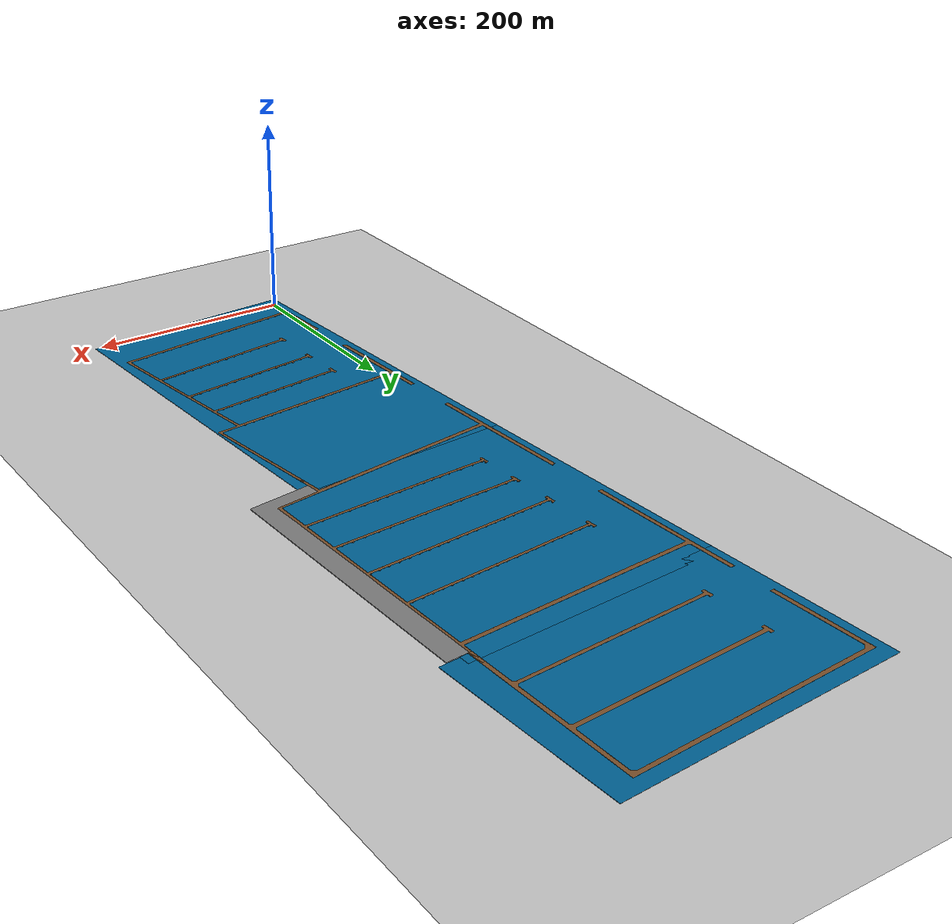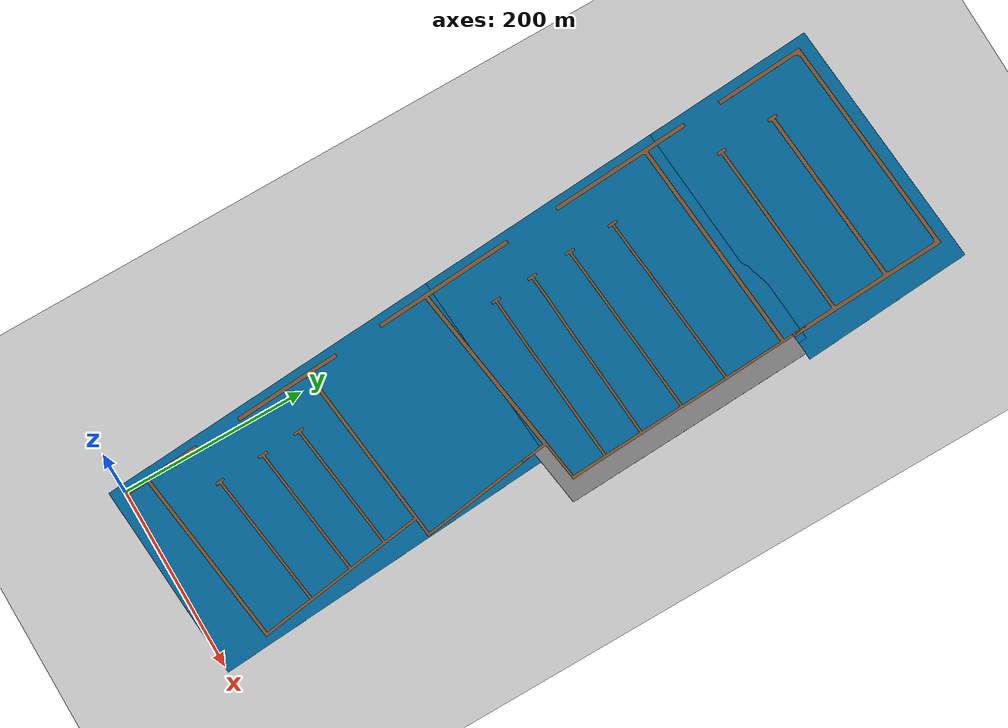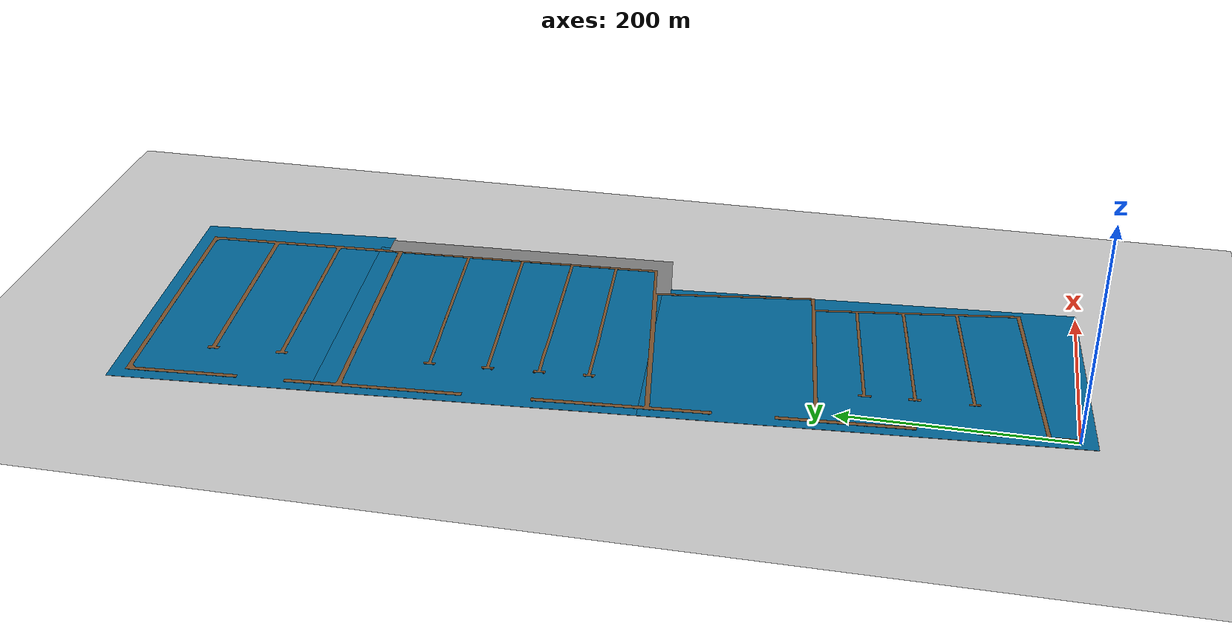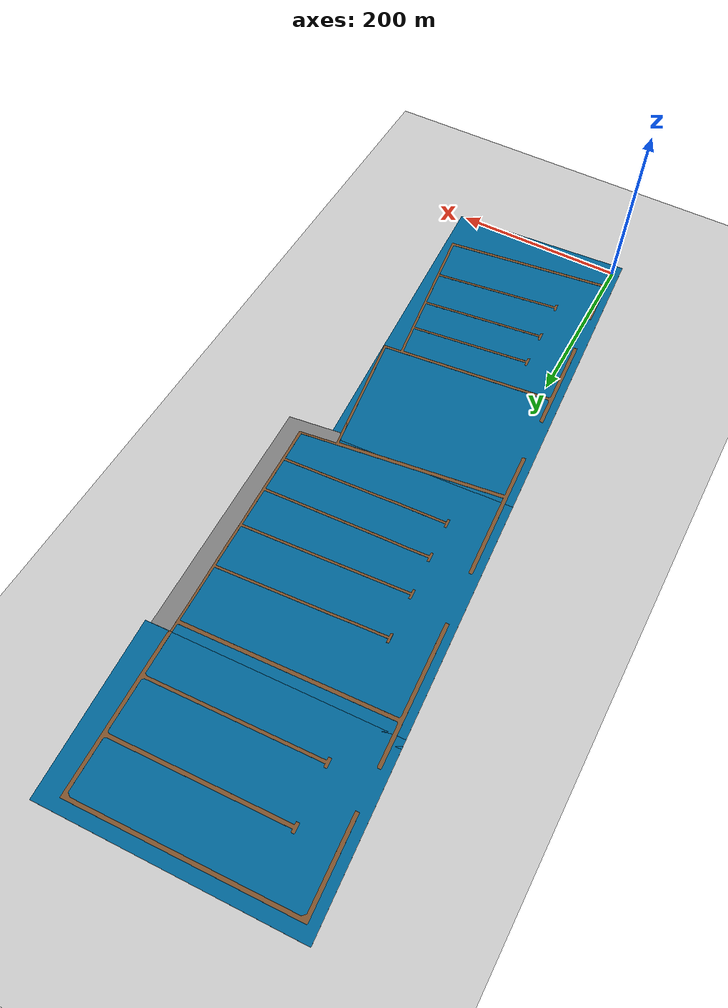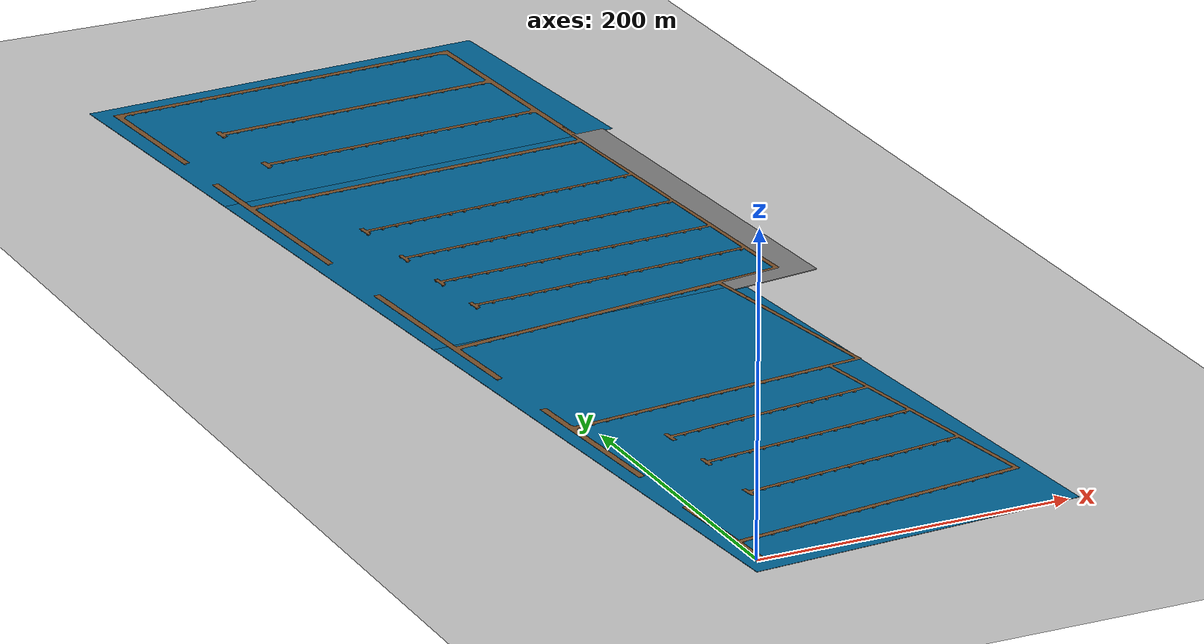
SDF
<sdf version="1.7">
 <world name="default">
  <plugin name="gazebo_ros_state" filename="libgazebo_ros_state.so">
   <ros><namespace>/gazebo</namespace></ros>
   <update_rate>1.0</update_rate>
  </plugin>
  <light name="sun" type="directional">
   <pose>0 0 10 0 -0 0</pose>
   <diffuse>0.8 0.8 0.8 1</diffuse>
   <specular>0.2 0.2 0.2 1</specular>
   <attenuation>
    <range>1000</range>
    <constant>0.9</constant>
    <linear>0.01</linear>
    <quadratic>0.001</quadratic>
   </attenuation>
   <direction>-0.5 0.1 -0.9</direction>
   <spot><inner_angle>0</inner_angle><outer_angle>0</outer_angle><falloff>0</falloff></spot>
  </light>
  <model name="ground_plane">
   <pose>50 50 -1 0 -0 0</pose>
   <static>1</static>
   <link name="link">
    <collision name="collision">
     <geometry><plane><normal>0 0 1</normal><size>100 100</size></plane></geometry>
     <surface><friction><ode><mu>100</mu><mu2>50</mu2></ode></friction></surface>
    </collision>
    <visual name="visual">
     <cast_shadows>0</cast_shadows>
     <geometry><plane><normal>0 0 1</normal><size>100 100</size></plane></geometry>
     <material>
      <script><uri>file://media/materials/scripts/gazebo.material</uri><name>Gazebo/Grey</name></script>
     </material>
    </visual>
   </link>
  </model>
  <gravity>0 0 -9.8</gravity>
  <magnetic_field>6e-06 2.3e-05 -4.2e-05</magnetic_field>
  <atmosphere type="adiabatic"/>
  <physics type="ode">
   <max_step_size>0.001</max_step_size>
   <real_time_factor>1</real_time_factor>
   <real_time_update_rate>1000</real_time_update_rate>
  </physics>
  <scene><ambient>0.4 0.4 0.4 1</ambient><background>0.7 0.7 0.7 1</background><shadows>1</shadows></scene>
  <audio><device>default</device></audio>
  <spherical_coordinates>
   <surface_model>EARTH_WGS84</surface_model>
   <latitude_deg>45.0271</latitude_deg>
   <longitude_deg>14.6258</longitude_deg>
   <elevation>1.5</elevation>
   <heading_deg>180</heading_deg>
  </spherical_coordinates>
  <model name="Marina_Zona_A">
   <link name="link">
    <inertial>
     <mass>100000</mass>
     <inertia><ixx>0</ixx><ixy>0</ixy><ixz>0</ixz><iyy>0</iyy><iyz>0</iyz><izz>0</izz></inertia>
    </inertial>
    <visual name="visual">
     <geometry>
      <mesh>
       <uri>/home/albert/marinero_ws/src/marinero_simulations/models/Marina_Zona_A/meshes/Marina_Zona_A.stl</uri>
       <scale>1 1 1</scale>
      </mesh>
     </geometry>
     <material>
      <script><uri>file://media/materials/scripts/gazebo.material</uri><name>Gazebo/Brown</name></script>
      <ambient>0.278 0.129 0.02 1</ambient>
      <diffuse>0.278 0.129 0.02 1</diffuse>
      <specular>0.278 0.129 0.02 1</specular>
      <emissive>0 0 0 1</emissive>
      <shader type="pixel"><normal_map>__default__</normal_map></shader>
     </material>
    </visual>
    <collision name="collision">
     <geometry>
      <mesh>
       <uri>/home/albert/marinero_ws/src/marinero_simulations/models/Marina_Zona_A/meshes/Marina_Zona_A.stl</uri>
       <scale>1 1 1</scale>
      </mesh>
     </geometry>
     <surface>
      <friction>
       <ode><mu>0.5</mu><mu2>0.5</mu2><fdir1>0 0 0</fdir1><slip1>0.001</slip1><slip2>1e-05</slip2></ode>
       <torsional>
        <coefficient>1</coefficient>
        <patch_radius>0</patch_radius>
        <surface_radius>0</surface_radius>
        <use_patch_radius>1</use_patch_radius>
        <ode><slip>0</slip></ode>
       </torsional>
      </friction>
      <bounce><restitution_coefficient>0</restitution_coefficient><threshold>1000</threshold></bounce>
      <contact>
       <collide_without_contact>0</collide_without_contact>
       <collide_without_contact_bitmask>0</collide_without_contact_bitmask>
       <collide_bitmask>1</collide_bitmask>
       <ode>
        <soft_cfm>0</soft_cfm>
        <soft_erp>0.2</soft_erp>
        <kp>1e+11</kp>
        <kd>100</kd>
        <max_vel>10</max_vel>
        <min_depth>0.001</min_depth>
       </ode>
       <bullet>
        <split_impulse>1</split_impulse>
        <split_impulse_penetration_threshold>-0.01</split_impulse_penetration_threshold>
        <soft_cfm>0</soft_cfm>
        <soft_erp>0.2</soft_erp>
        <kp>1e+11</kp>
        <kd>100</kd>
       </bullet>
      </contact>
     </surface>
    </collision>
   </link>
   <static>1</static>
   <pose>0 0 0.08 0 -0 0.067999</pose>
  </model>
  <model name="sea_plane_A">
   <link name="link">
    <inertial>
     <mass>5.27875e+06</mass>
     <inertia>
      <ixx>4.66688e+09</ixx>
      <ixy>0</ixy>
      <ixz>0</ixz>
      <iyy>1.84866e+10</iyy>
      <iyz>0</iyz>
      <izz>2.31535e+10</izz>
     </inertia>
    </inertial>
    <visual name="visual">
     <cast_shadows>0</cast_shadows>
     <geometry><box><size>215 378 0.25</size></box></geometry>
     <material>
      <script>
       <uri>model://sea_plane/materials/scripts</uri>
       <uri>model://sea_plane/materials/textures</uri>
       <name>vrc/sea</name>
      </script>
      <shader type="pixel"><normal_map>__default__</normal_map></shader>
      <ambient>0 0.4 0.6 0</ambient>
      <diffuse>0 0.4 0.6 1</diffuse>
      <specular>0.2 0.2 0.2 1</specular>
      <emissive>0 0 0 1</emissive>
     </material>
    </visual>
    <collision name="collision">
     <geometry><box><size>215 378 0.25</size></box></geometry>
     <surface>
      <friction>
       <ode><mu>1</mu><mu2>1</mu2><fdir1>0 0 0</fdir1><slip1>0</slip1><slip2>0</slip2></ode>
       <torsional>
        <coefficient>1</coefficient>
        <patch_radius>0</patch_radius>
        <surface_radius>0</surface_radius>
        <use_patch_radius>1</use_patch_radius>
        <ode><slip>0</slip></ode>
       </torsional>
      </friction>
      <bounce><restitution_coefficient>0</restitution_coefficient><threshold>1e+06</threshold></bounce>
      <contact>
       <collide_without_contact>0</collide_without_contact>
       <collide_without_contact_bitmask>1</collide_without_contact_bitmask>
       <collide_bitmask>1</collide_bitmask>
       <ode>
        <soft_cfm>0</soft_cfm>
        <soft_erp>0.2</soft_erp>
        <kp>1e+13</kp>
        <kd>1</kd>
        <max_vel>0.01</max_vel>
        <min_depth>0</min_depth>
       </ode>
       <bullet>
        <split_impulse>1</split_impulse>
        <split_impulse_penetration_threshold>-0.01</split_impulse_penetration_threshold>
        <soft_cfm>0</soft_cfm>
        <soft_erp>0.2</soft_erp>
        <kp>1e+13</kp>
        <kd>1</kd>
       </bullet>
      </contact>
     </surface>
    </collision>
   </link>
   <static>1</static>
   <pose>87 181.108 0 0 -0 0.067999</pose>
  </model>
  <model name="Marina_Zona_B">
   <link name="link">
    <inertial>
     <mass>100000</mass>
     <inertia><ixx>0</ixx><ixy>0</ixy><ixz>0</ixz><iyy>0</iyy><iyz>0</iyz><izz>0</izz></inertia>
    </inertial>
    <visual name="visual">
     <geometry>
      <mesh>
       <uri>/home/albert/marinero_ws/src/marinero_simulations/models/Marina_Zona_B/meshes/Marina_Zona_B.stl</uri>
       <scale>1 1 1</scale>
      </mesh>
     </geometry>
     <material>
      <script><uri>file://media/materials/scripts/gazebo.material</uri><name>Gazebo/Brown</name></script>
      <ambient>0.278 0.129 0.02 1</ambient>
      <diffuse>0.278 0.129 0.02 1</diffuse>
      <specular>0.278 0.129 0.02 1</specular>
      <emissive>0 0 0 1</emissive>
      <shader type="pixel"><normal_map>__default__</normal_map></shader>
     </material>
    </visual>
    <collision name="collision">
     <geometry>
      <mesh>
       <uri>/home/albert/marinero_ws/src/marinero_simulations/models/Marina_Zona_B/meshes/Marina_Zona_B.stl</uri>
       <scale>1 1 1</scale>
      </mesh>
     </geometry>
     <surface>
      <friction>
       <ode><mu>0.5</mu><mu2>0.5</mu2><fdir1>0 0 0</fdir1><slip1>0.001</slip1><slip2>1e-05</slip2></ode>
       <torsional>
        <coefficient>1</coefficient>
        <patch_radius>0</patch_radius>
        <surface_radius>0</surface_radius>
        <use_patch_radius>1</use_patch_radius>
        <ode><slip>0</slip></ode>
       </torsional>
      </friction>
      <bounce><restitution_coefficient>0</restitution_coefficient><threshold>1000</threshold></bounce>
      <contact>
       <collide_without_contact>0</collide_without_contact>
       <collide_without_contact_bitmask>0</collide_without_contact_bitmask>
       <collide_bitmask>1</collide_bitmask>
       <ode>
        <soft_cfm>0</soft_cfm>
        <soft_erp>0.2</soft_erp>
        <kp>1e+11</kp>
        <kd>100</kd>
        <max_vel>10</max_vel>
        <min_depth>0.001</min_depth>
       </ode>
       <bullet>
        <split_impulse>1</split_impulse>
        <split_impulse_penetration_threshold>-0.01</split_impulse_penetration_threshold>
        <soft_cfm>0</soft_cfm>
        <soft_erp>0.2</soft_erp>
        <kp>1e+11</kp>
        <kd>100</kd>
       </bullet>
      </contact>
     </surface>
    </collision>
   </link>
   <static>1</static>
   <pose>170.954 353.3 0.08 0 -0 0.0676</pose>
  </model>
  <model name="Marina_Zona_C">
   <link name="link">
    <inertial>
     <mass>50000</mass>
     <inertia><ixx>0</ixx><ixy>0</ixy><ixz>0</ixz><iyy>0</iyy><iyz>0</iyz><izz>0</izz></inertia>
    </inertial>
    <visual name="visual">
     <geometry>
      <mesh>
       <uri>/home/albert/marinero_ws/src/marinero_simulations/models/Marina_Zona_C/meshes/Marina_Zona_C.stl</uri>
       <scale>1 1 1</scale>
      </mesh>
     </geometry>
     <material>
      <script><uri>file://media/materials/scripts/gazebo.material</uri><name>Gazebo/Brown</name></script>
      <ambient>0.278 0.129 0.02 1</ambient>
      <diffuse>0.278 0.129 0.02 1</diffuse>
      <specular>0.278 0.129 0.02 1</specular>
      <emissive>0 0 0 1</emissive>
      <shader type="pixel"><normal_map>__default__</normal_map></shader>
     </material>
    </visual>
    <collision name="collision">
     <geometry>
      <mesh>
       <uri>/home/albert/marinero_ws/src/marinero_simulations/models/Marina_Zona_C/meshes/Marina_Zona_C.stl</uri>
       <scale>1 1 1</scale>
      </mesh>
     </geometry>
     <surface>
      <friction>
       <ode><mu>0.5</mu><mu2>0.5</mu2><fdir1>0 0 0</fdir1><slip1>0.001</slip1><slip2>1e-05</slip2></ode>
       <torsional>
        <coefficient>1</coefficient>
        <patch_radius>0</patch_radius>
        <surface_radius>0</surface_radius>
        <use_patch_radius>1</use_patch_radius>
        <ode><slip>0</slip></ode>
       </torsional>
      </friction>
      <bounce><restitution_coefficient>0</restitution_coefficient><threshold>1000</threshold></bounce>
      <contact>
       <collide_without_contact>0</collide_without_contact>
       <collide_without_contact_bitmask>0</collide_without_contact_bitmask>
       <collide_bitmask>1</collide_bitmask>
       <ode>
        <soft_cfm>0</soft_cfm>
        <soft_erp>0.2</soft_erp>
        <kp>1e+11</kp>
        <kd>100</kd>
        <max_vel>10</max_vel>
        <min_depth>0.001</min_depth>
       </ode>
       <bullet>
        <split_impulse>1</split_impulse>
        <split_impulse_penetration_threshold>-0.01</split_impulse_penetration_threshold>
        <soft_cfm>0</soft_cfm>
        <soft_erp>0.2</soft_erp>
        <kp>1e+11</kp>
        <kd>100</kd>
       </bullet>
      </contact>
     </surface>
    </collision>
   </link>
   <static>1</static>
   <pose>196.956 650.585 0.08 0 -0 0.0685</pose>
  </model>
  <model name="sea_plane_C">
   <link name="link">
    <inertial>
     <mass>5.27875e+06</mass>
     <inertia>
      <ixx>4.66688e+09</ixx>
      <ixy>0</ixy>
      <ixz>0</ixz>
      <iyy>1.84866e+10</iyy>
      <iyz>0</iyz>
      <izz>2.31535e+10</izz>
     </inertia>
    </inertial>
    <visual name="visual">
     <cast_shadows>0</cast_shadows>
     <geometry><box><size>280 190 0.25</size></box></geometry>
     <material>
      <script>
       <uri>model://sea_plane/materials/scripts</uri>
       <uri>model://sea_plane/materials/textures</uri>
       <name>vrc/sea</name>
      </script>
      <shader type="pixel"><normal_map>__default__</normal_map></shader>
      <ambient>0 0.4 0.6 0</ambient>
      <diffuse>0 0.4 0.6 1</diffuse>
      <specular>0.2 0.2 0.2 1</specular>
      <emissive>0 0 0 1</emissive>
     </material>
    </visual>
    <collision name="collision">
     <geometry><box><size>280 190 0.25</size></box></geometry>
     <surface>
      <friction>
       <ode><mu>1</mu><mu2>1</mu2><fdir1>0 0 0</fdir1><slip1>0</slip1><slip2>0</slip2></ode>
       <torsional>
        <coefficient>1</coefficient>
        <patch_radius>0</patch_radius>
        <surface_radius>0</surface_radius>
        <use_patch_radius>1</use_patch_radius>
        <ode><slip>0</slip></ode>
       </torsional>
      </friction>
      <bounce><restitution_coefficient>0</restitution_coefficient><threshold>1e+06</threshold></bounce>
      <contact>
       <collide_without_contact>0</collide_without_contact>
       <collide_without_contact_bitmask>1</collide_without_contact_bitmask>
       <collide_bitmask>1</collide_bitmask>
       <ode>
        <soft_cfm>0</soft_cfm>
        <soft_erp>0.2</soft_erp>
        <kp>1e+13</kp>
        <kd>1</kd>
        <max_vel>0.01</max_vel>
        <min_depth>0</min_depth>
       </ode>
       <bullet>
        <split_impulse>1</split_impulse>
        <split_impulse_penetration_threshold>-0.01</split_impulse_penetration_threshold>
        <soft_cfm>0</soft_cfm>
        <soft_erp>0.2</soft_erp>
        <kp>1e+13</kp>
        <kd>1</kd>
       </bullet>
      </contact>
     </surface>
    </collision>
   </link>
   <static>1</static>
   <pose>81.6558 737.9 0 0 -0 0.067999</pose>
  </model>
  <light name="sun_clone" type="directional">
   <pose>80.4023 649.977 50 0 -0 0</pose>
   <diffuse>0.8 0.8 0.8 1</diffuse>
   <specular>0.2 0.2 0.2 1</specular>
   <direction>-0.483368 0.096674 -0.870063</direction>
   <attenuation>
    <range>1000</range>
    <constant>0.9</constant>
    <linear>0.01</linear>
    <quadratic>0.001</quadratic>
   </attenuation>
   <spot><inner_angle>0</inner_angle><outer_angle>0</outer_angle><falloff>0</falloff></spot>
  </light>
  <model name="asphalt_plane_zone_B">
   <link name="link">
    <inertial>
     <mass>1</mass>
     <inertia><ixx>1</ixx><ixy>0</ixy><ixz>0</ixz><iyy>1</iyy><iyz>0</iyz><izz>1</izz></inertia>
    </inertial>
    <pose>0 0 1.015 0 0 -0.045</pose>
    <visual name="visual">
     <geometry>
      <mesh>
       <uri>/home/albert/marinero_ws/src/marinero_simulations/models/asphalt_plane_zone_B/meshes/asphalt_plane_zone_B.dae</uri>
       <scale>1 1 1</scale>
      </mesh>
     </geometry>
     <material>
      <script>
       <uri>/home/albert/marinero_ws/src/marinero_simulations/models/asphalt_plane_zone_B/materials/scripts</uri>
       <uri>/home/albert/marinero_ws/src/marinero_simulations/models/asphalt_plane_zone_B/materials/textures/tarmac.png</uri>
       <name>asphalt_B/texture</name>
      </script>
      <shader type="pixel"><normal_map>__default__</normal_map></shader>
      <ambient>0.5 0.5 0.5 1</ambient>
      <diffuse>0.5 0.5 0.5 1</diffuse>
      <specular>0.2 0.2 0.2 1</specular>
      <emissive>0 0 0 1</emissive>
     </material>
    </visual>
    <collision name="collision">
     <geometry>
      <mesh>
       <uri>/home/albert/marinero_ws/src/marinero_simulations/models/asphalt_plane_zone_B/meshes/asphalt_plane_zone_B.dae</uri>
       <scale>1 1 1</scale>
      </mesh>
     </geometry>
     <surface>
      <friction>
       <ode><mu>1</mu><mu2>1</mu2><fdir1>0 0 0</fdir1><slip1>0.001</slip1><slip2>1e-05</slip2></ode>
       <torsional>
        <coefficient>1</coefficient>
        <patch_radius>0</patch_radius>
        <surface_radius>0</surface_radius>
        <use_patch_radius>1</use_patch_radius>
        <ode><slip>0</slip></ode>
       </torsional>
      </friction>
      <bounce><restitution_coefficient>0</restitution_coefficient><threshold>1e+06</threshold></bounce>
      <contact>
       <collide_without_contact>0</collide_without_contact>
       <collide_without_contact_bitmask>1</collide_without_contact_bitmask>
       <collide_bitmask>1</collide_bitmask>
       <ode>
        <soft_cfm>0</soft_cfm>
        <soft_erp>0.2</soft_erp>
        <kp>1e+13</kp>
        <kd>1</kd>
        <max_vel>0.01</max_vel>
        <min_depth>0</min_depth>
       </ode>
       <bullet>
        <split_impulse>1</split_impulse>
        <split_impulse_penetration_threshold>-0.01</split_impulse_penetration_threshold>
        <soft_cfm>0</soft_cfm>
        <soft_erp>0.2</soft_erp>
        <kp>1e+13</kp>
        <kd>1</kd>
       </bullet>
      </contact>
     </surface>
    </collision>
   </link>
   <static>1</static>
   <pose>171.772 367.982 0 0 -0 0.0676</pose>
  </model>
  <model name="sea_plane_B">
   <link name="link">
    <inertial>
     <mass>5.27875e+06</mass>
     <inertia>
      <ixx>4.66688e+09</ixx>
      <ixy>0</ixy>
      <ixz>0</ixz>
      <iyy>1.84866e+10</iyy>
      <iyz>0</iyz>
      <izz>2.31535e+10</izz>
     </inertia>
    </inertial>
    <visual name="visual">
     <cast_shadows>0</cast_shadows>
     <geometry><box><size>260 282 0.25</size></box></geometry>
     <material>
      <script>
       <uri>model://sea_plane/materials/scripts</uri>
       <uri>model://sea_plane/materials/textures</uri>
       <name>vrc/sea</name>
      </script>
      <shader type="pixel"><normal_map>__default__</normal_map></shader>
      <ambient>0 0.4 0.6 0</ambient>
      <diffuse>0 0.4 0.6 1</diffuse>
      <specular>0.2 0.2 0.2 1</specular>
      <emissive>0 0 0 1</emissive>
     </material>
    </visual>
    <collision name="collision">
     <geometry><box><size>260 282 0.25</size></box></geometry>
     <surface>
      <friction>
       <ode><mu>1</mu><mu2>1</mu2><fdir1>0 0 0</fdir1><slip1>0</slip1><slip2>0</slip2></ode>
       <torsional>
        <coefficient>1</coefficient>
        <patch_radius>0</patch_radius>
        <surface_radius>0</surface_radius>
        <use_patch_radius>1</use_patch_radius>
        <ode><slip>0</slip></ode>
       </torsional>
      </friction>
      <bounce><restitution_coefficient>0</restitution_coefficient><threshold>1e+06</threshold></bounce>
      <contact>
       <collide_without_contact>0</collide_without_contact>
       <collide_without_contact_bitmask>1</collide_without_contact_bitmask>
       <collide_bitmask>1</collide_bitmask>
       <ode>
        <soft_cfm>0</soft_cfm>
        <soft_erp>0.2</soft_erp>
        <kp>1e+13</kp>
        <kd>1</kd>
        <max_vel>0.01</max_vel>
        <min_depth>0</min_depth>
       </ode>
       <bullet>
        <split_impulse>1</split_impulse>
        <split_impulse_penetration_threshold>-0.01</split_impulse_penetration_threshold>
        <soft_cfm>0</soft_cfm>
        <soft_erp>0.2</soft_erp>
        <kp>1e+13</kp>
        <kd>1</kd>
       </bullet>
      </contact>
     </surface>
    </collision>
   </link>
   <static>1</static>
   <pose>87.0532 511.465 0 0 -0 0.068</pose>
  </model>
 </world>
</sdf>
